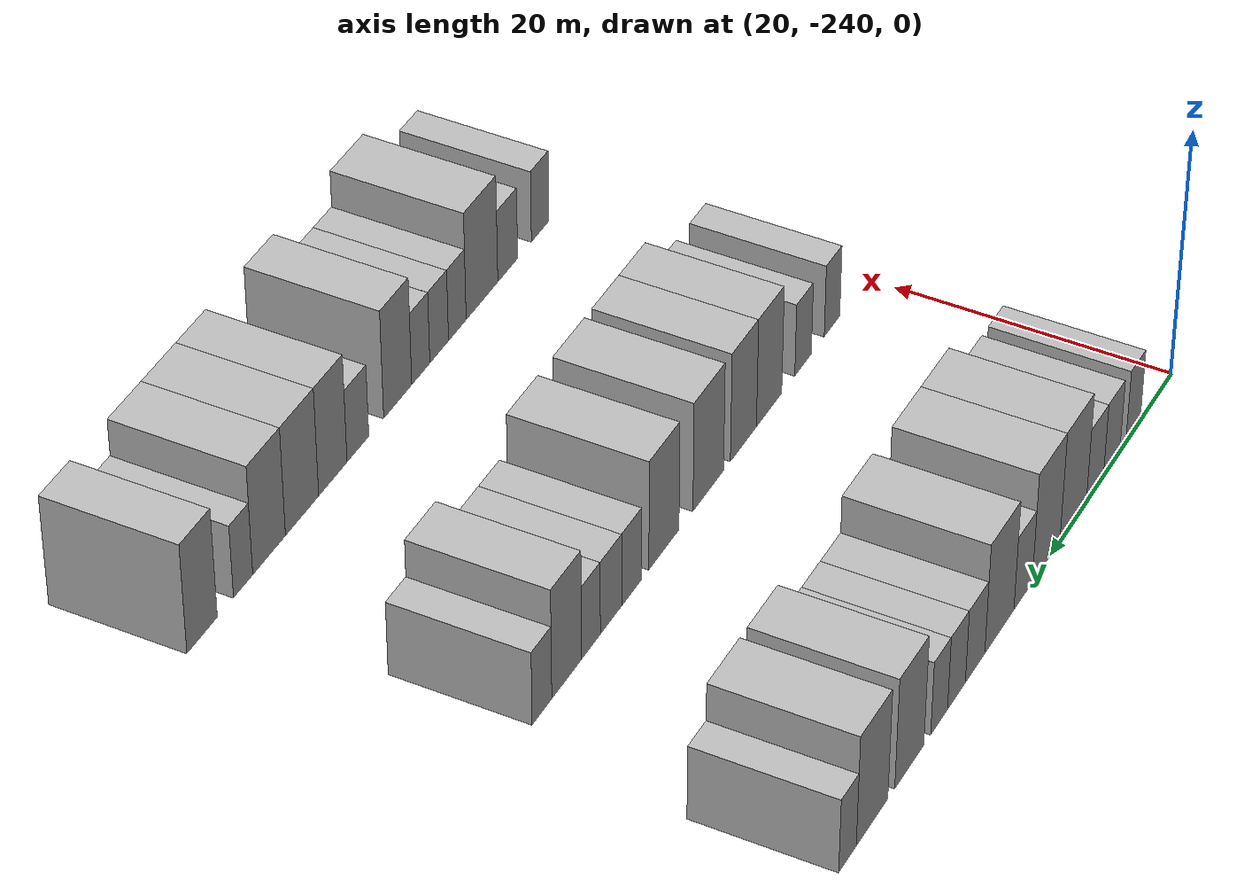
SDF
<sdf version="1.6">
 <world name="default">
  <model name="building_41">
   <static>1</static>
   <pose>25.0000 -233.4140 0 0.000000 0.000000 0.000000</pose>
   <link name="link">
    <pose>0 0 3.00 0 0 0</pose>
    <collision name="collision"><geometry><box><size>10.0000 2.4038 6.0000</size></box></geometry></collision>
    <visual name="visual">
     <cast_shadows>0</cast_shadows>
     <geometry><box><size>10.0000 2.4038 6.0000</size></box></geometry>
     <material>
      <script>
       <uri>model://HANNAS_wall/materials/scripts</uri>
       <uri>model://HANNAS_wall/materials/textures</uri>
       <name>vrc/HANNAS_wall</name>
      </script>
     </material>
    </visual>
   </link>
  </model>
  <model name="building_42">
   <static>1</static>
   <pose>25.0000 -229.8659 0 0.000000 0.000000 0.000000</pose>
   <link name="link">
    <pose>0 0 3.00 0 0 0</pose>
    <collision name="collision"><geometry><box><size>10.0000 2.6924 6.0000</size></box></geometry></collision>
    <visual name="visual">
     <cast_shadows>0</cast_shadows>
     <geometry><box><size>10.0000 2.6924 6.0000</size></box></geometry>
     <material>
      <script>
       <uri>model://HANNAS_wall/materials/scripts</uri>
       <uri>model://HANNAS_wall/materials/textures</uri>
       <name>vrc/HANNAS_wall</name>
      </script>
     </material>
    </visual>
   </link>
  </model>
  <model name="building_43">
   <static>1</static>
   <pose>25.0000 -227.1198 0 0.000000 0.000000 0.000000</pose>
   <link name="link">
    <pose>0 0 3.00 0 0 0</pose>
    <collision name="collision"><geometry><box><size>10.0000 2.7999 6.0000</size></box></geometry></collision>
    <visual name="visual">
     <cast_shadows>0</cast_shadows>
     <geometry><box><size>10.0000 2.7999 6.0000</size></box></geometry>
     <material>
      <script>
       <uri>model://HANNAS_wall/materials/scripts</uri>
       <uri>model://HANNAS_wall/materials/textures</uri>
       <name>vrc/HANNAS_wall</name>
      </script>
     </material>
    </visual>
   </link>
  </model>
  <model name="building_44">
   <static>1</static>
   <pose>25.0000 -223.5872 0 0.000000 0.000000 0.000000</pose>
   <link name="link">
    <pose>0 0 4.50 0 0 0</pose>
    <collision name="collision"><geometry><box><size>10.0000 4.2653 9.0000</size></box></geometry></collision>
    <visual name="visual">
     <cast_shadows>0</cast_shadows>
     <geometry><box><size>10.0000 4.2653 9.0000</size></box></geometry>
     <material>
      <script>
       <uri>model://HANNAS_wall/materials/scripts</uri>
       <uri>model://HANNAS_wall/materials/textures</uri>
       <name>vrc/HANNAS_wall</name>
      </script>
     </material>
    </visual>
   </link>
  </model>
  <model name="building_45">
   <static>1</static>
   <pose>25.0000 -219.2611 0 0.000000 0.000000 0.000000</pose>
   <link name="link">
    <pose>0 0 4.50 0 0 0</pose>
    <collision name="collision"><geometry><box><size>10.0000 4.3868 9.0000</size></box></geometry></collision>
    <visual name="visual">
     <cast_shadows>0</cast_shadows>
     <geometry><box><size>10.0000 4.3868 9.0000</size></box></geometry>
     <material>
      <script>
       <uri>model://HANNAS_wall/materials/scripts</uri>
       <uri>model://HANNAS_wall/materials/textures</uri>
       <name>vrc/HANNAS_wall</name>
      </script>
     </material>
    </visual>
   </link>
  </model>
  <model name="building_46">
   <static>1</static>
   <pose>25.0000 -215.6398 0 0.000000 0.000000 0.000000</pose>
   <link name="link">
    <pose>0 0 3.00 0 0 0</pose>
    <collision name="collision"><geometry><box><size>10.0000 2.8558 6.0000</size></box></geometry></collision>
    <visual name="visual">
     <cast_shadows>0</cast_shadows>
     <geometry><box><size>10.0000 2.8558 6.0000</size></box></geometry>
     <material>
      <script>
       <uri>model://HANNAS_wall/materials/scripts</uri>
       <uri>model://HANNAS_wall/materials/textures</uri>
       <name>vrc/HANNAS_wall</name>
      </script>
     </material>
    </visual>
   </link>
  </model>
  <model name="building_47">
   <static>1</static>
   <pose>25.0000 -211.9693 0 0.000000 0.000000 0.000000</pose>
   <link name="link">
    <pose>0 0 4.50 0 0 0</pose>
    <collision name="collision"><geometry><box><size>10.0000 4.4852 9.0000</size></box></geometry></collision>
    <visual name="visual">
     <cast_shadows>0</cast_shadows>
     <geometry><box><size>10.0000 4.4852 9.0000</size></box></geometry>
     <material>
      <script>
       <uri>model://HANNAS_wall/materials/scripts</uri>
       <uri>model://HANNAS_wall/materials/textures</uri>
       <name>vrc/HANNAS_wall</name>
      </script>
     </material>
    </visual>
   </link>
  </model>
  <model name="building_48">
   <static>1</static>
   <pose>25.0000 -208.2581 0 0.000000 0.000000 0.000000</pose>
   <link name="link">
    <pose>0 0 3.00 0 0 0</pose>
    <collision name="collision"><geometry><box><size>10.0000 2.9372 6.0000</size></box></geometry></collision>
    <visual name="visual">
     <cast_shadows>0</cast_shadows>
     <geometry><box><size>10.0000 2.9372 6.0000</size></box></geometry>
     <material>
      <script>
       <uri>model://HANNAS_wall/materials/scripts</uri>
       <uri>model://HANNAS_wall/materials/textures</uri>
       <name>vrc/HANNAS_wall</name>
      </script>
     </material>
    </visual>
   </link>
  </model>
  <model name="building_49">
   <static>1</static>
   <pose>25.0000 -205.4530 0 0.000000 0.000000 0.000000</pose>
   <link name="link">
    <pose>0 0 3.00 0 0 0</pose>
    <collision name="collision"><geometry><box><size>10.0000 2.6730 6.0000</size></box></geometry></collision>
    <visual name="visual">
     <cast_shadows>0</cast_shadows>
     <geometry><box><size>10.0000 2.6730 6.0000</size></box></geometry>
     <material>
      <script>
       <uri>model://HANNAS_wall/materials/scripts</uri>
       <uri>model://HANNAS_wall/materials/textures</uri>
       <name>vrc/HANNAS_wall</name>
      </script>
     </material>
    </visual>
   </link>
  </model>
  <model name="building_50">
   <static>1</static>
   <pose>25.0000 -202.8707 0 0.000000 0.000000 0.000000</pose>
   <link name="link">
    <pose>0 0 3.00 0 0 0</pose>
    <collision name="collision"><geometry><box><size>10.0000 2.4918 6.0000</size></box></geometry></collision>
    <visual name="visual">
     <cast_shadows>0</cast_shadows>
     <geometry><box><size>10.0000 2.4918 6.0000</size></box></geometry>
     <material>
      <script>
       <uri>model://HANNAS_wall/materials/scripts</uri>
       <uri>model://HANNAS_wall/materials/textures</uri>
       <name>vrc/HANNAS_wall</name>
      </script>
     </material>
    </visual>
   </link>
  </model>
  <model name="building_51">
   <static>1</static>
   <pose>25.0000 -198.5113 0 0.000000 0.000000 0.000000</pose>
   <link name="link">
    <pose>0 0 4.50 0 0 0</pose>
    <collision name="collision"><geometry><box><size>10.0000 4.2268 9.0000</size></box></geometry></collision>
    <visual name="visual">
     <cast_shadows>0</cast_shadows>
     <geometry><box><size>10.0000 4.2268 9.0000</size></box></geometry>
     <material>
      <script>
       <uri>model://HANNAS_wall/materials/scripts</uri>
       <uri>model://HANNAS_wall/materials/textures</uri>
       <name>vrc/HANNAS_wall</name>
      </script>
     </material>
    </visual>
   </link>
  </model>
  <model name="building_52">
   <static>1</static>
   <pose>25.0000 -193.1591 0 0.000000 0.000000 0.000000</pose>
   <link name="link">
    <pose>0 0 4.50 0 0 0</pose>
    <collision name="collision"><geometry><box><size>10.0000 4.4777 9.0000</size></box></geometry></collision>
    <visual name="visual">
     <cast_shadows>0</cast_shadows>
     <geometry><box><size>10.0000 4.4777 9.0000</size></box></geometry>
     <material>
      <script>
       <uri>model://HANNAS_wall/materials/scripts</uri>
       <uri>model://HANNAS_wall/materials/textures</uri>
       <name>vrc/HANNAS_wall</name>
      </script>
     </material>
    </visual>
   </link>
  </model>
  <model name="building_53">
   <static>1</static>
   <pose>25.0000 -189.6882 0 0.000000 0.000000 0.000000</pose>
   <link name="link">
    <pose>0 0 3.00 0 0 0</pose>
    <collision name="collision"><geometry><box><size>10.0000 2.4640 6.0000</size></box></geometry></collision>
    <visual name="visual">
     <cast_shadows>0</cast_shadows>
     <geometry><box><size>10.0000 2.4640 6.0000</size></box></geometry>
     <material>
      <script>
       <uri>model://HANNAS_wall/materials/scripts</uri>
       <uri>model://HANNAS_wall/materials/textures</uri>
       <name>vrc/HANNAS_wall</name>
      </script>
     </material>
    </visual>
   </link>
  </model>
  <model name="building_229">
   <static>1</static>
   <pose>47.0000 -234.3491 0 0.000000 0.000000 0.000000</pose>
   <link name="link">
    <pose>0 0 3.00 0 0 0</pose>
    <collision name="collision"><geometry><box><size>10.0000 2.4189 6.0000</size></box></geometry></collision>
    <visual name="visual">
     <cast_shadows>0</cast_shadows>
     <geometry><box><size>10.0000 2.4189 6.0000</size></box></geometry>
     <material>
      <script>
       <uri>model://HANNAS_wall/materials/scripts</uri>
       <uri>model://HANNAS_wall/materials/textures</uri>
       <name>vrc/HANNAS_wall</name>
      </script>
     </material>
    </visual>
   </link>
  </model>
  <model name="building_230">
   <static>1</static>
   <pose>47.0000 -229.8753 0 0.000000 0.000000 0.000000</pose>
   <link name="link">
    <pose>0 0 3.00 0 0 0</pose>
    <collision name="collision"><geometry><box><size>10.0000 2.5286 6.0000</size></box></geometry></collision>
    <visual name="visual">
     <cast_shadows>0</cast_shadows>
     <geometry><box><size>10.0000 2.5286 6.0000</size></box></geometry>
     <material>
      <script>
       <uri>model://HANNAS_wall/materials/scripts</uri>
       <uri>model://HANNAS_wall/materials/textures</uri>
       <name>vrc/HANNAS_wall</name>
      </script>
     </material>
    </visual>
   </link>
  </model>
  <model name="building_231">
   <static>1</static>
   <pose>47.0000 -224.7155 0 0.000000 0.000000 0.000000</pose>
   <link name="link">
    <pose>0 0 4.50 0 0 0</pose>
    <collision name="collision"><geometry><box><size>10.0000 3.7911 9.0000</size></box></geometry></collision>
    <visual name="visual">
     <cast_shadows>0</cast_shadows>
     <geometry><box><size>10.0000 3.7911 9.0000</size></box></geometry>
     <material>
      <script>
       <uri>model://HANNAS_wall/materials/scripts</uri>
       <uri>model://HANNAS_wall/materials/textures</uri>
       <name>vrc/HANNAS_wall</name>
      </script>
     </material>
    </visual>
   </link>
  </model>
  <model name="building_232">
   <static>1</static>
   <pose>47.0000 -220.8886 0 0.000000 0.000000 0.000000</pose>
   <link name="link">
    <pose>0 0 4.50 0 0 0</pose>
    <collision name="collision"><geometry><box><size>10.0000 3.8626 9.0000</size></box></geometry></collision>
    <visual name="visual">
     <cast_shadows>0</cast_shadows>
     <geometry><box><size>10.0000 3.8626 9.0000</size></box></geometry>
     <material>
      <script>
       <uri>model://HANNAS_wall/materials/scripts</uri>
       <uri>model://HANNAS_wall/materials/textures</uri>
       <name>vrc/HANNAS_wall</name>
      </script>
     </material>
    </visual>
   </link>
  </model>
  <model name="building_233">
   <static>1</static>
   <pose>47.0000 -215.7398 0 0.000000 0.000000 0.000000</pose>
   <link name="link">
    <pose>0 0 4.50 0 0 0</pose>
    <collision name="collision"><geometry><box><size>10.0000 4.4350 9.0000</size></box></geometry></collision>
    <visual name="visual">
     <cast_shadows>0</cast_shadows>
     <geometry><box><size>10.0000 4.4350 9.0000</size></box></geometry>
     <material>
      <script>
       <uri>model://HANNAS_wall/materials/scripts</uri>
       <uri>model://HANNAS_wall/materials/textures</uri>
       <name>vrc/HANNAS_wall</name>
      </script>
     </material>
    </visual>
   </link>
  </model>
  <model name="building_234">
   <static>1</static>
   <pose>47.0000 -209.3943 0 0.000000 0.000000 0.000000</pose>
   <link name="link">
    <pose>0 0 4.50 0 0 0</pose>
    <collision name="collision"><geometry><box><size>10.0000 4.2561 9.0000</size></box></geometry></collision>
    <visual name="visual">
     <cast_shadows>0</cast_shadows>
     <geometry><box><size>10.0000 4.2561 9.0000</size></box></geometry>
     <material>
      <script>
       <uri>model://HANNAS_wall/materials/scripts</uri>
       <uri>model://HANNAS_wall/materials/textures</uri>
       <name>vrc/HANNAS_wall</name>
      </script>
     </material>
    </visual>
   </link>
  </model>
  <model name="building_235">
   <static>1</static>
   <pose>47.0000 -204.8738 0 0.000000 0.000000 0.000000</pose>
   <link name="link">
    <pose>0 0 3.00 0 0 0</pose>
    <collision name="collision"><geometry><box><size>10.0000 2.7849 6.0000</size></box></geometry></collision>
    <visual name="visual">
     <cast_shadows>0</cast_shadows>
     <geometry><box><size>10.0000 2.7849 6.0000</size></box></geometry>
     <material>
      <script>
       <uri>model://HANNAS_wall/materials/scripts</uri>
       <uri>model://HANNAS_wall/materials/textures</uri>
       <name>vrc/HANNAS_wall</name>
      </script>
     </material>
    </visual>
   </link>
  </model>
  <model name="building_236">
   <static>1</static>
   <pose>47.0000 -202.0239 0 0.000000 0.000000 0.000000</pose>
   <link name="link">
    <pose>0 0 3.00 0 0 0</pose>
    <collision name="collision"><geometry><box><size>10.0000 2.9149 6.0000</size></box></geometry></collision>
    <visual name="visual">
     <cast_shadows>0</cast_shadows>
     <geometry><box><size>10.0000 2.9149 6.0000</size></box></geometry>
     <material>
      <script>
       <uri>model://HANNAS_wall/materials/scripts</uri>
       <uri>model://HANNAS_wall/materials/textures</uri>
       <name>vrc/HANNAS_wall</name>
      </script>
     </material>
    </visual>
   </link>
  </model>
  <model name="building_237">
   <static>1</static>
   <pose>47.0000 -199.2921 0 0.000000 0.000000 0.000000</pose>
   <link name="link">
    <pose>0 0 3.00 0 0 0</pose>
    <collision name="collision"><geometry><box><size>10.0000 2.5487 6.0000</size></box></geometry></collision>
    <visual name="visual">
     <cast_shadows>0</cast_shadows>
     <geometry><box><size>10.0000 2.5487 6.0000</size></box></geometry>
     <material>
      <script>
       <uri>model://HANNAS_wall/materials/scripts</uri>
       <uri>model://HANNAS_wall/materials/textures</uri>
       <name>vrc/HANNAS_wall</name>
      </script>
     </material>
    </visual>
   </link>
  </model>
  <model name="building_238">
   <static>1</static>
   <pose>47.0000 -196.0253 0 0.000000 0.000000 0.000000</pose>
   <link name="link">
    <pose>0 0 4.50 0 0 0</pose>
    <collision name="collision"><geometry><box><size>10.0000 3.9850 9.0000</size></box></geometry></collision>
    <visual name="visual">
     <cast_shadows>0</cast_shadows>
     <geometry><box><size>10.0000 3.9850 9.0000</size></box></geometry>
     <material>
      <script>
       <uri>model://HANNAS_wall/materials/scripts</uri>
       <uri>model://HANNAS_wall/materials/textures</uri>
       <name>vrc/HANNAS_wall</name>
      </script>
     </material>
    </visual>
   </link>
  </model>
  <model name="building_239">
   <static>1</static>
   <pose>47.0000 -192.7365 0 0.000000 0.000000 0.000000</pose>
   <link name="link">
    <pose>0 0 3.00 0 0 0</pose>
    <collision name="collision"><geometry><box><size>10.0000 2.5926 6.0000</size></box></geometry></collision>
    <visual name="visual">
     <cast_shadows>0</cast_shadows>
     <geometry><box><size>10.0000 2.5926 6.0000</size></box></geometry>
     <material>
      <script>
       <uri>model://HANNAS_wall/materials/scripts</uri>
       <uri>model://HANNAS_wall/materials/textures</uri>
       <name>vrc/HANNAS_wall</name>
      </script>
     </material>
    </visual>
   </link>
  </model>
  <model name="building_420">
   <static>1</static>
   <pose>69.0000 -234.6057 0 0.000000 0.000000 0.000000</pose>
   <link name="link">
    <pose>0 0 3.00 0 0 0</pose>
    <collision name="collision"><geometry><box><size>10.0000 2.5686 6.0000</size></box></geometry></collision>
    <visual name="visual">
     <cast_shadows>0</cast_shadows>
     <geometry><box><size>10.0000 2.5686 6.0000</size></box></geometry>
     <material>
      <script>
       <uri>model://HANNAS_wall/materials/scripts</uri>
       <uri>model://HANNAS_wall/materials/textures</uri>
       <name>vrc/HANNAS_wall</name>
      </script>
     </material>
    </visual>
   </link>
  </model>
  <model name="building_421">
   <static>1</static>
   <pose>69.0000 -229.8954 0 0.000000 0.000000 0.000000</pose>
   <link name="link">
    <pose>0 0 3.00 0 0 0</pose>
    <collision name="collision"><geometry><box><size>10.0000 2.8521 6.0000</size></box></geometry></collision>
    <visual name="visual">
     <cast_shadows>0</cast_shadows>
     <geometry><box><size>10.0000 2.8521 6.0000</size></box></geometry>
     <material>
      <script>
       <uri>model://HANNAS_wall/materials/scripts</uri>
       <uri>model://HANNAS_wall/materials/textures</uri>
       <name>vrc/HANNAS_wall</name>
      </script>
     </material>
    </visual>
   </link>
  </model>
  <model name="building_422">
   <static>1</static>
   <pose>69.0000 -226.2197 0 0.000000 0.000000 0.000000</pose>
   <link name="link">
    <pose>0 0 4.50 0 0 0</pose>
    <collision name="collision"><geometry><box><size>10.0000 4.4993 9.0000</size></box></geometry></collision>
    <visual name="visual">
     <cast_shadows>0</cast_shadows>
     <geometry><box><size>10.0000 4.4993 9.0000</size></box></geometry>
     <material>
      <script>
       <uri>model://HANNAS_wall/materials/scripts</uri>
       <uri>model://HANNAS_wall/materials/textures</uri>
       <name>vrc/HANNAS_wall</name>
      </script>
     </material>
    </visual>
   </link>
  </model>
  <model name="building_423">
   <static>1</static>
   <pose>69.0000 -222.7365 0 0.000000 0.000000 0.000000</pose>
   <link name="link">
    <pose>0 0 3.00 0 0 0</pose>
    <collision name="collision"><geometry><box><size>10.0000 2.4671 6.0000</size></box></geometry></collision>
    <visual name="visual">
     <cast_shadows>0</cast_shadows>
     <geometry><box><size>10.0000 2.4671 6.0000</size></box></geometry>
     <material>
      <script>
       <uri>model://HANNAS_wall/materials/scripts</uri>
       <uri>model://HANNAS_wall/materials/textures</uri>
       <name>vrc/HANNAS_wall</name>
      </script>
     </material>
    </visual>
   </link>
  </model>
  <model name="building_424">
   <static>1</static>
   <pose>69.0000 -220.2055 0 0.000000 0.000000 0.000000</pose>
   <link name="link">
    <pose>0 0 3.00 0 0 0</pose>
    <collision name="collision"><geometry><box><size>10.0000 2.5948 6.0000</size></box></geometry></collision>
    <visual name="visual">
     <cast_shadows>0</cast_shadows>
     <geometry><box><size>10.0000 2.5948 6.0000</size></box></geometry>
     <material>
      <script>
       <uri>model://HANNAS_wall/materials/scripts</uri>
       <uri>model://HANNAS_wall/materials/textures</uri>
       <name>vrc/HANNAS_wall</name>
      </script>
     </material>
    </visual>
   </link>
  </model>
  <model name="building_425">
   <static>1</static>
   <pose>69.0000 -217.6667 0 0.000000 0.000000 0.000000</pose>
   <link name="link">
    <pose>0 0 3.00 0 0 0</pose>
    <collision name="collision"><geometry><box><size>10.0000 2.4826 6.0000</size></box></geometry></collision>
    <visual name="visual">
     <cast_shadows>0</cast_shadows>
     <geometry><box><size>10.0000 2.4826 6.0000</size></box></geometry>
     <material>
      <script>
       <uri>model://HANNAS_wall/materials/scripts</uri>
       <uri>model://HANNAS_wall/materials/textures</uri>
       <name>vrc/HANNAS_wall</name>
      </script>
     </material>
    </visual>
   </link>
  </model>
  <model name="building_426">
   <static>1</static>
   <pose>69.0000 -214.5228 0 0.000000 0.000000 0.000000</pose>
   <link name="link">
    <pose>0 0 4.50 0 0 0</pose>
    <collision name="collision"><geometry><box><size>10.0000 3.8052 9.0000</size></box></geometry></collision>
    <visual name="visual">
     <cast_shadows>0</cast_shadows>
     <geometry><box><size>10.0000 3.8052 9.0000</size></box></geometry>
     <material>
      <script>
       <uri>model://HANNAS_wall/materials/scripts</uri>
       <uri>model://HANNAS_wall/materials/textures</uri>
       <name>vrc/HANNAS_wall</name>
      </script>
     </material>
    </visual>
   </link>
  </model>
  <model name="building_427">
   <static>1</static>
   <pose>69.0000 -209.1785 0 0.000000 0.000000 0.000000</pose>
   <link name="link">
    <pose>0 0 3.00 0 0 0</pose>
    <collision name="collision"><geometry><box><size>10.0000 2.8835 6.0000</size></box></geometry></collision>
    <visual name="visual">
     <cast_shadows>0</cast_shadows>
     <geometry><box><size>10.0000 2.8835 6.0000</size></box></geometry>
     <material>
      <script>
       <uri>model://HANNAS_wall/materials/scripts</uri>
       <uri>model://HANNAS_wall/materials/textures</uri>
       <name>vrc/HANNAS_wall</name>
      </script>
     </material>
    </visual>
   </link>
  </model>
  <model name="building_428">
   <static>1</static>
   <pose>69.0000 -205.8769 0 0.000000 0.000000 0.000000</pose>
   <link name="link">
    <pose>0 0 4.50 0 0 0</pose>
    <collision name="collision"><geometry><box><size>10.0000 3.7196 9.0000</size></box></geometry></collision>
    <visual name="visual">
     <cast_shadows>0</cast_shadows>
     <geometry><box><size>10.0000 3.7196 9.0000</size></box></geometry>
     <material>
      <script>
       <uri>model://HANNAS_wall/materials/scripts</uri>
       <uri>model://HANNAS_wall/materials/textures</uri>
       <name>vrc/HANNAS_wall</name>
      </script>
     </material>
    </visual>
   </link>
  </model>
  <model name="building_429">
   <static>1</static>
   <pose>69.0000 -201.8745 0 0.000000 0.000000 0.000000</pose>
   <link name="link">
    <pose>0 0 4.50 0 0 0</pose>
    <collision name="collision"><geometry><box><size>10.0000 4.2852 9.0000</size></box></geometry></collision>
    <visual name="visual">
     <cast_shadows>0</cast_shadows>
     <geometry><box><size>10.0000 4.2852 9.0000</size></box></geometry>
     <material>
      <script>
       <uri>model://HANNAS_wall/materials/scripts</uri>
       <uri>model://HANNAS_wall/materials/textures</uri>
       <name>vrc/HANNAS_wall</name>
      </script>
     </material>
    </visual>
   </link>
  </model>
  <model name="building_430">
   <static>1</static>
   <pose>69.0000 -197.6601 0 0.000000 0.000000 0.000000</pose>
   <link name="link">
    <pose>0 0 4.50 0 0 0</pose>
    <collision name="collision"><geometry><box><size>10.0000 4.1437 9.0000</size></box></geometry></collision>
    <visual name="visual">
     <cast_shadows>0</cast_shadows>
     <geometry><box><size>10.0000 4.1437 9.0000</size></box></geometry>
     <material>
      <script>
       <uri>model://HANNAS_wall/materials/scripts</uri>
       <uri>model://HANNAS_wall/materials/textures</uri>
       <name>vrc/HANNAS_wall</name>
      </script>
     </material>
    </visual>
   </link>
  </model>
  <model name="building_431">
   <static>1</static>
   <pose>69.0000 -194.3809 0 0.000000 0.000000 0.000000</pose>
   <link name="link">
    <pose>0 0 3.00 0 0 0</pose>
    <collision name="collision"><geometry><box><size>10.0000 2.4147 6.0000</size></box></geometry></collision>
    <visual name="visual">
     <cast_shadows>0</cast_shadows>
     <geometry><box><size>10.0000 2.4147 6.0000</size></box></geometry>
     <material>
      <script>
       <uri>model://HANNAS_wall/materials/scripts</uri>
       <uri>model://HANNAS_wall/materials/textures</uri>
       <name>vrc/HANNAS_wall</name>
      </script>
     </material>
    </visual>
   </link>
  </model>
  <model name="building_432">
   <static>1</static>
   <pose>69.0000 -189.3086 0 0.000000 0.000000 0.000000</pose>
   <link name="link">
    <pose>0 0 4.50 0 0 0</pose>
    <collision name="collision"><geometry><box><size>10.0000 3.7299 9.0000</size></box></geometry></collision>
    <visual name="visual">
     <cast_shadows>0</cast_shadows>
     <geometry><box><size>10.0000 3.7299 9.0000</size></box></geometry>
     <material>
      <script>
       <uri>model://HANNAS_wall/materials/scripts</uri>
       <uri>model://HANNAS_wall/materials/textures</uri>
       <name>vrc/HANNAS_wall</name>
      </script>
     </material>
    </visual>
   </link>
  </model>
 </world>
</sdf>
